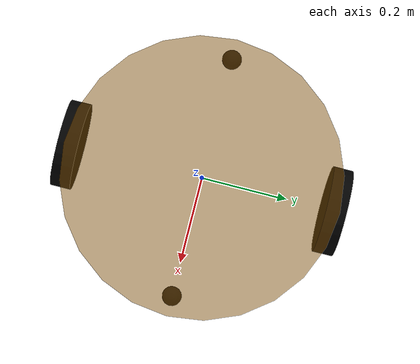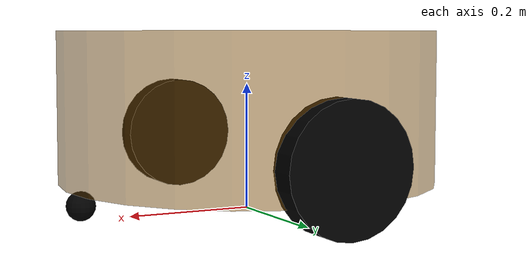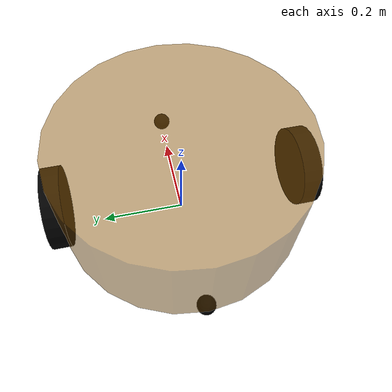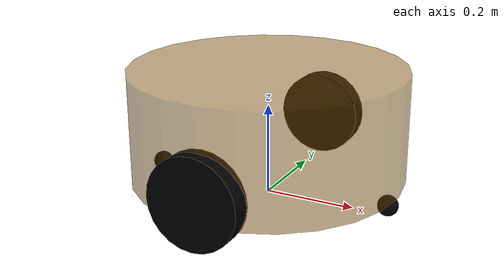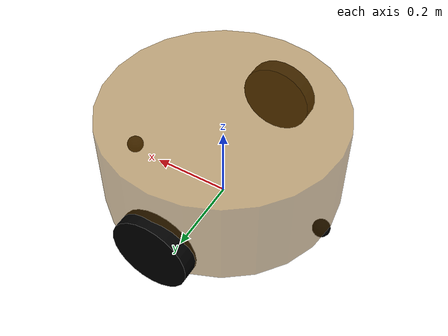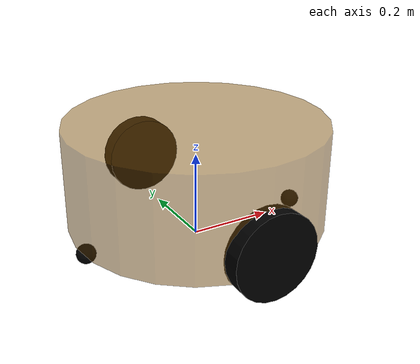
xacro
<robot name="my_base" xmlns:xacro="http://www.ros.org/wiki/xacro">

    <xacro:property name="PI" value="3.141"/>

    <material name="black">
        <color rgba="0.0 0.0 0.0 1.0" />
    </material>

    <xacro:property name="base_footprint_radius" value="0.001" />
    <xacro:property name="base_link_radius" value="0.3" />
    <xacro:property name="base_link_length" value="0.24" />
    <xacro:property name="earth_space" value="0.045" />

    <link name="base_footprint">
      <visual>
        <geometry>
          <sphere radius="${base_footprint_radius}" />
        </geometry>
      </visual>
    </link>

    <link name="base_link">
      <visual>
        <geometry>
          <cylinder radius="${base_link_radius}" length="${base_link_length}" />
        </geometry>
        <origin xyz="0 0 0" rpy="0 0 0" />
        <material name="yellow">
          <color rgba="0.5 0.3 0.0 0.5" />
        </material>
      </visual>
    </link>

    <joint name="base_link2base_footprint" type="fixed">
      <parent link="base_footprint" />
      <child link="base_link" />
      <origin xyz="0 0 ${earth_space + base_link_length / 2 }" />
    </joint>

    <xacro:property name="wheel_radius" value="0.0975" />
    <xacro:property name="wheel_length" value="0.045" />

    <xacro:macro name="add_wheels" params="name flag">
      <link name="${name}_wheel">
        <visual>
          <geometry>
            <cylinder radius="${wheel_radius}" length="${wheel_length}" />
          </geometry>
          <origin xyz="0.0 0.0 0.0" rpy="${PI / 2} 0.0 0.0" />
          <material name="black" />
        </visual>
      </link>

      <joint name="${name}_wheel2base_link" type="continuous">
        <parent link="base_link" />
        <child link="${name}_wheel" />
        <origin xyz="0 ${flag * base_link_radius} ${-(earth_space + base_link_length / 2 - wheel_radius) }" />
        <axis xyz="0 1 0" />
      </joint>
    </xacro:macro>
    <xacro:add_wheels name="left" flag="1" />
    <xacro:add_wheels name="right" flag="-1" />

    <xacro:property name="support_wheel_radius" value="0.0225" />

    <xacro:macro name="add_support_wheel" params="name flag" >
      <link name="${name}_wheel">
        <visual>
            <geometry>
                <sphere radius="${support_wheel_radius}" />
            </geometry>
            <origin xyz="0 0 0" rpy="0 0 0" />
            <material name="black" />
        </visual>
      </link>

      <joint name="${name}_wheel2base_link" type="continuous">
          <parent link="base_link" />
          <child link="${name}_wheel" />
          <origin xyz="${flag * (base_link_radius - support_wheel_radius)} 0 ${-(base_link_length / 2 + earth_space / 2)}" />
          <axis xyz="1 1 1" />
      </joint>
    </xacro:macro>

    <xacro:add_support_wheel name="front" flag="1" />
    <xacro:add_support_wheel name="back" flag="-1" />

</robot>
